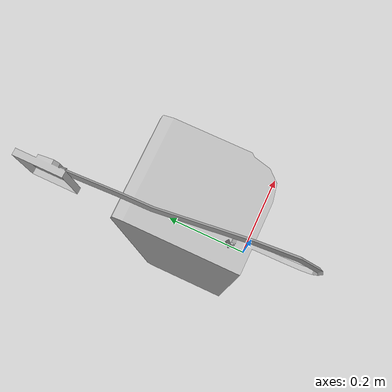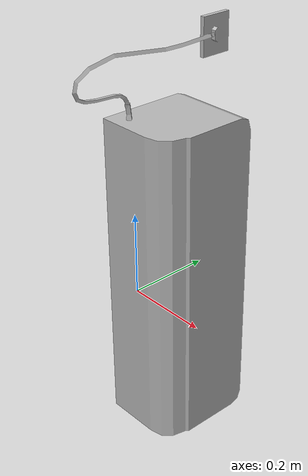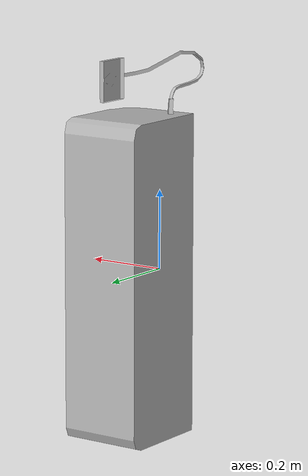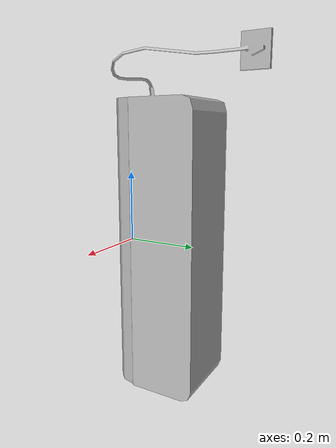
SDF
<?xml version="1.0" ?>
<sdf version="1.6">
  <model name="aws_robomaker_residential_AirconditionerA_01">
    <link name="link">
      <inertial>
        <mass>1</mass>
	<inertia>
          <ixx>1</ixx>
          <ixy>0</ixy>
          <ixz>0</ixz>
          <iyy>1</iyy>
          <iyz>0</iyz>
          <izz>1</izz>
        </inertia>
      </inertial>
      <collision name="collision">
        <geometry>
          <mesh>
            <uri>meshes/object.obj</uri>
            <scale>1 1 1</scale>
          </mesh>
        </geometry>
      </collision>
      <visual name="visual">
	    <geometry>
          <mesh>
            <uri>meshes/object.obj</uri>
          </mesh>
        </geometry>
      <meta> <layer> 1 </layer></meta>
</visual>
    </link>
	<static>1</static>
  </model>
</sdf>
